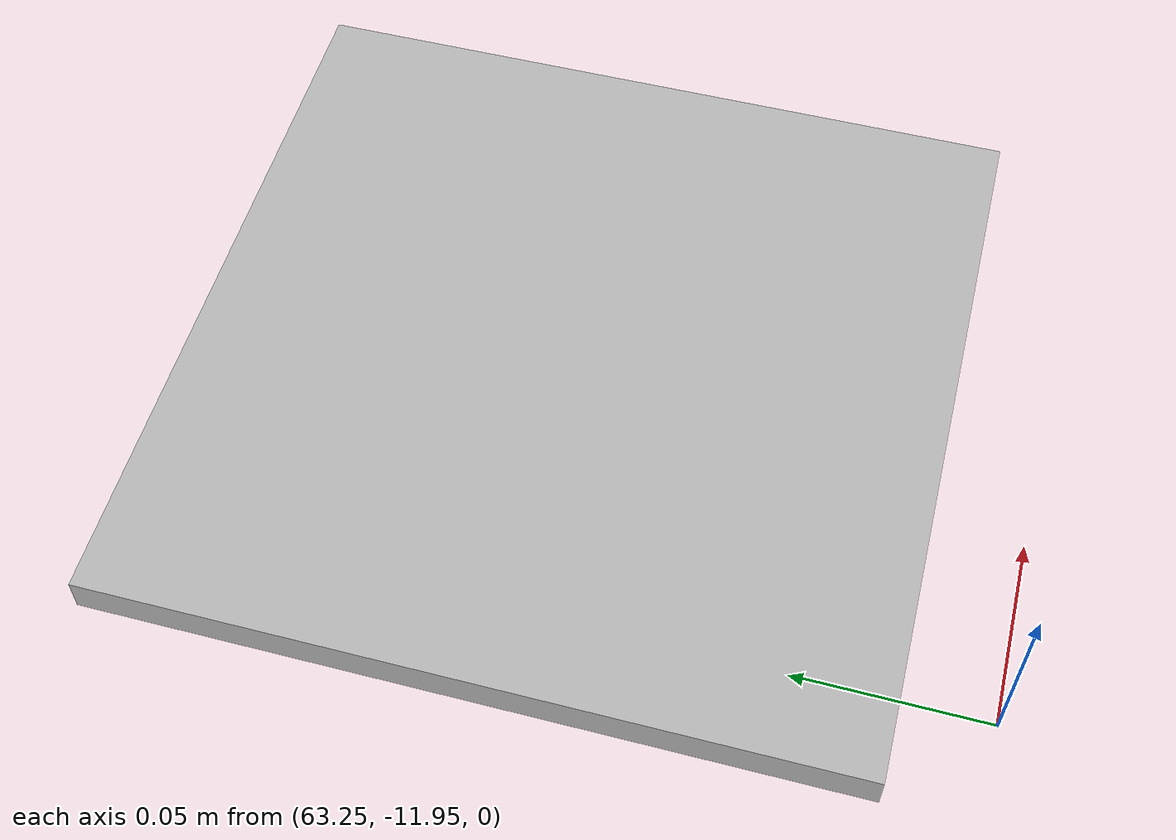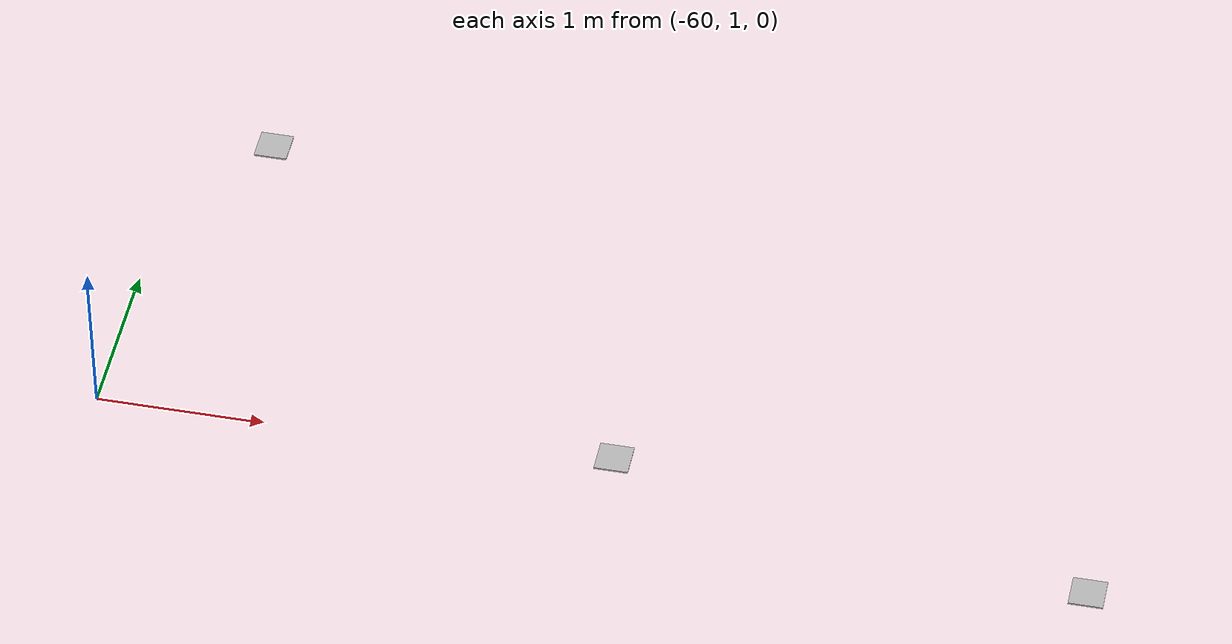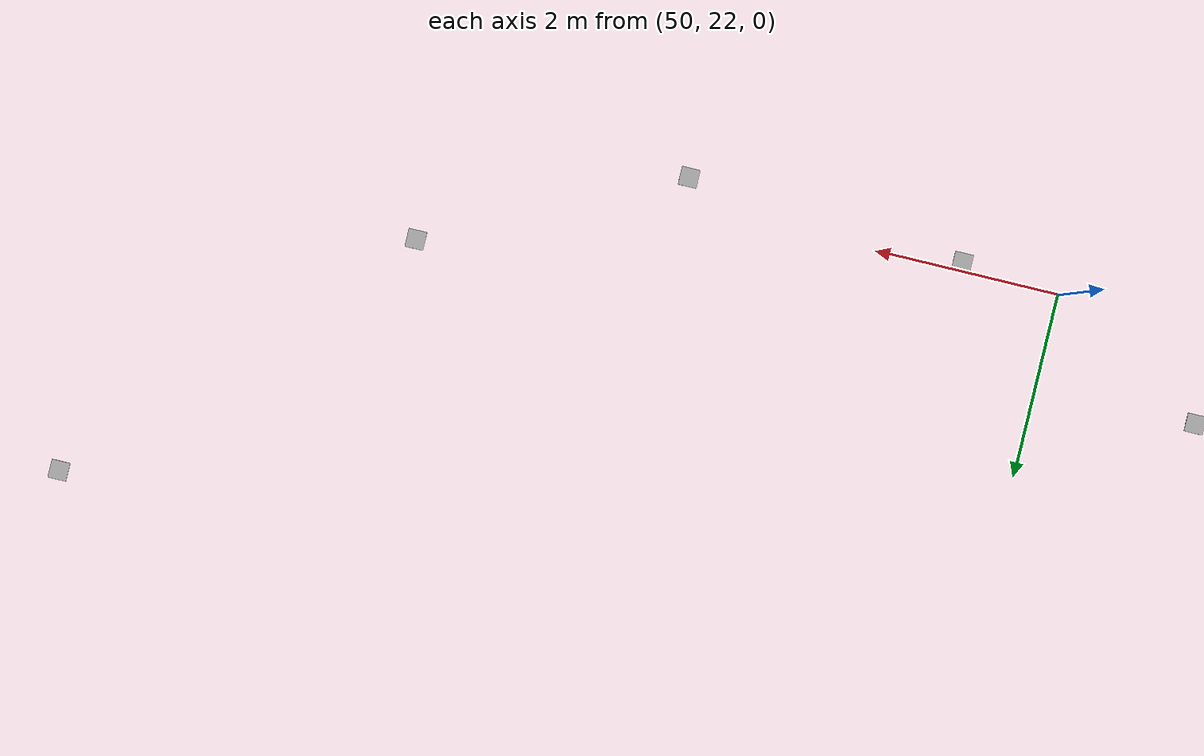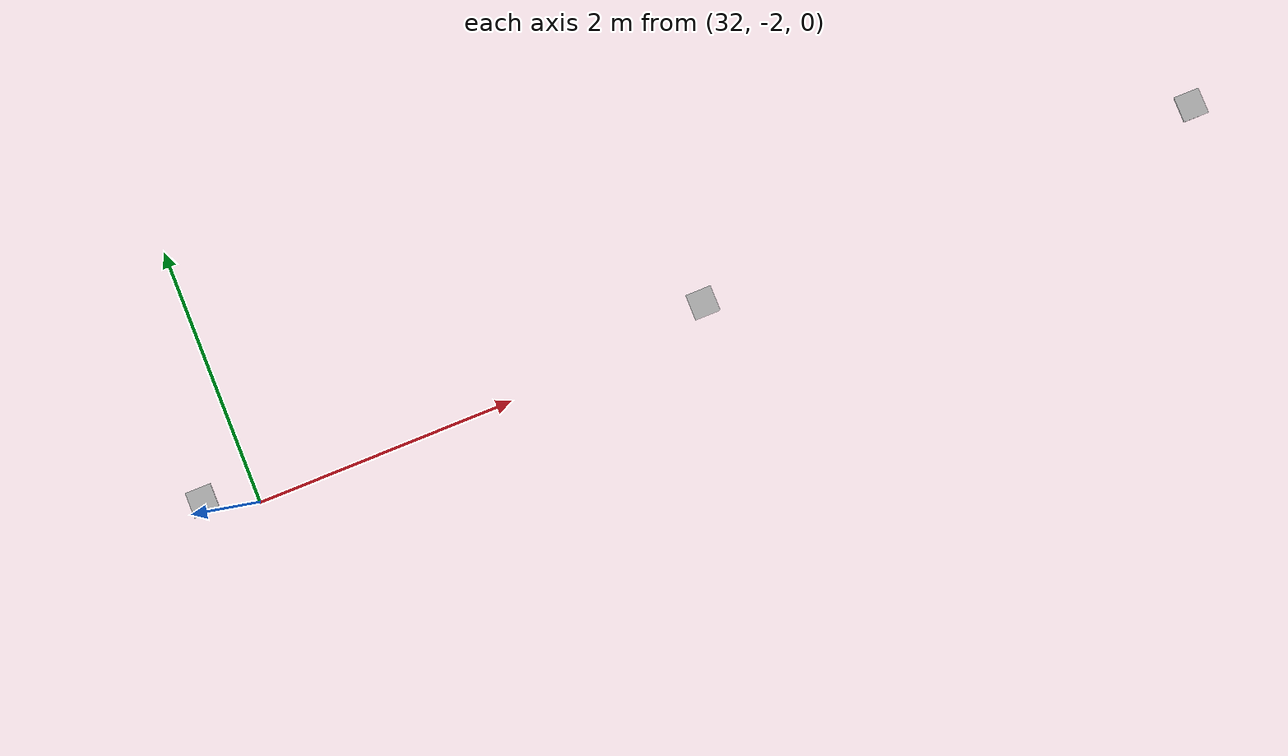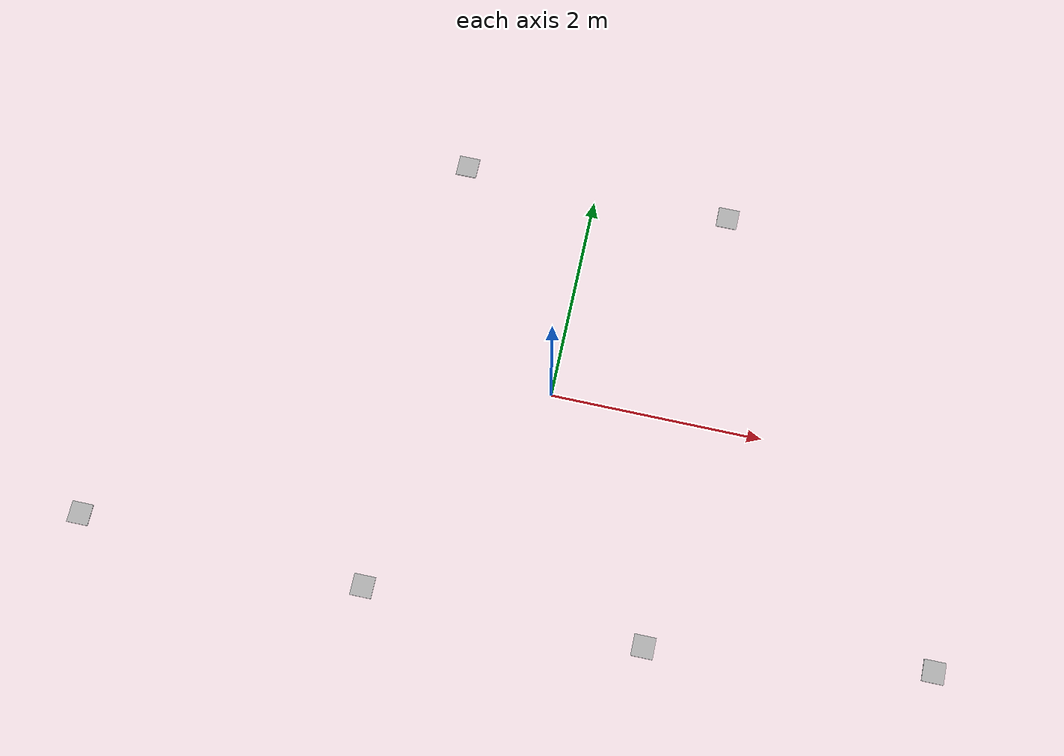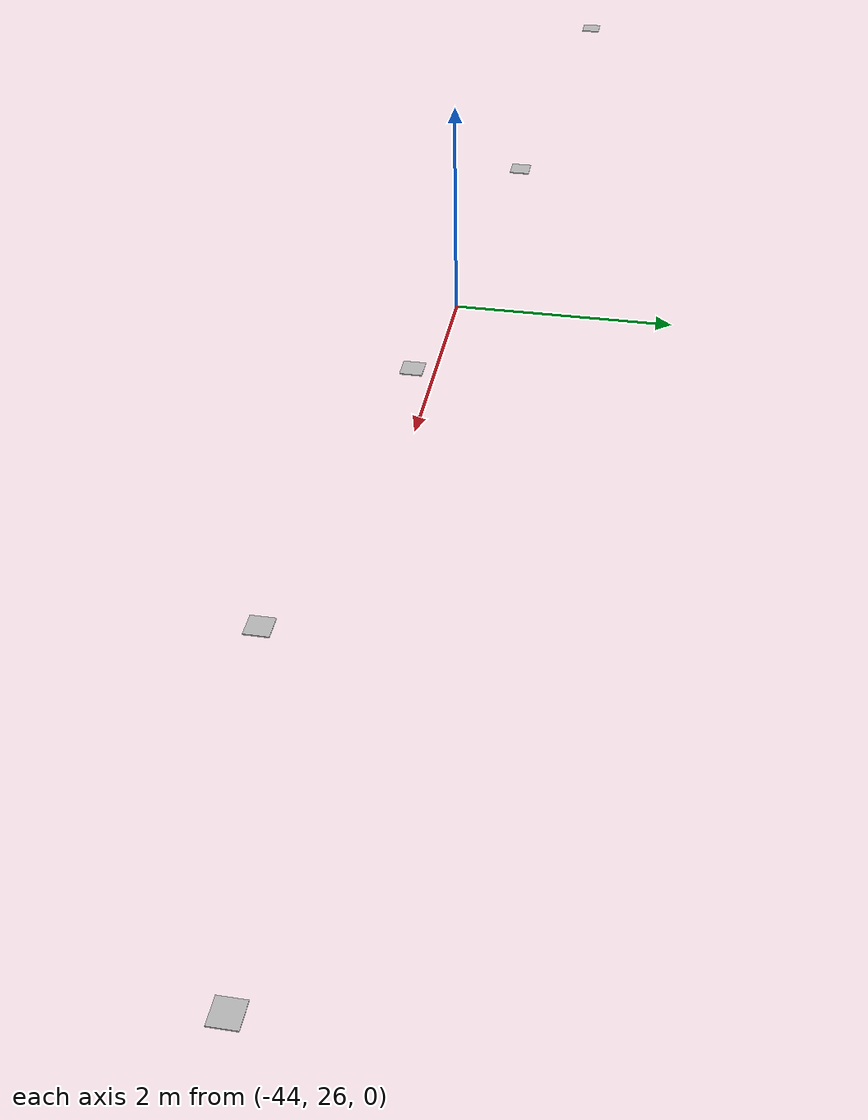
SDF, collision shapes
<?xml version='1.0' encoding='UTF-8'?>
<sdf version="1.4">
  <model name="some track">
    <include>
      <uri>model://cone_yellow</uri>
      <pose>3.882215022601452 -1.797297978044986 0 0 0 0</pose>
      <name>cone_right</name>
    </include>
    <include>
      <uri>model://cone_yellow</uri>
      <pose>7.891671089952982 -1.8409363456154262 0 0 0 0</pose>
      <name>cone_right</name>
    </include>
    <include>
      <uri>model://cone_yellow</uri>
      <pose>11.866871325148177 -1.8370316687459616 0 0 0 0</pose>
      <name>cone_right</name>
    </include>
    <include>
      <uri>model://cone_yellow</uri>
      <pose>15.81505661712021 -1.8526933715620444 0 0 0 0</pose>
      <name>cone_right</name>
    </include>
    <include>
      <uri>model://cone_yellow</uri>
      <pose>19.792605359863973 -1.8160668437269316 0 0 0 0</pose>
      <name>cone_right</name>
    </include>
    <include>
      <uri>model://cone_yellow</uri>
      <pose>23.77433902991659 -1.7148735920068297 0 0 0 0</pose>
      <name>cone_right</name>
    </include>
    <include>
      <uri>model://cone_yellow</uri>
      <pose>27.679037530347685 -1.7336472708352932 0 0 0 0</pose>
      <name>cone_right</name>
    </include>
    <include>
      <uri>model://cone_yellow</uri>
      <pose>31.6032659484331 -1.8295488659008463 0 0 0 0</pose>
      <name>cone_right</name>
    </include>
    <include>
      <uri>model://cone_yellow</uri>
      <pose>35.59734281316367 -1.8501600570787549 0 0 0 0</pose>
      <name>cone_right</name>
    </include>
    <include>
      <uri>model://cone_yellow</uri>
      <pose>39.559188197874654 -1.838586414346345 0 0 0 0</pose>
      <name>cone_right</name>
    </include>
    <include>
      <uri>model://cone_yellow</uri>
      <pose>43.483492806991165 -1.8569485618495234 0 0 0 0</pose>
      <name>cone_right</name>
    </include>
    <include>
      <uri>model://cone_yellow</uri>
      <pose>47.52266032827457 -1.818367892362298 0 0 0 0</pose>
      <name>cone_right</name>
    </include>
    <include>
      <uri>model://cone_yellow</uri>
      <pose>50.97496303147042 -2.589434194706195 0 0 0 0</pose>
      <name>cone_right</name>
    </include>
    <include>
      <uri>model://cone_yellow</uri>
      <pose>53.38892791012007 -4.7878785235748715 0 0 0 0</pose>
      <name>cone_right</name>
    </include>
    <include>
      <uri>model://cone_yellow</uri>
      <pose>55.83146065989252 -7.586071194064796 0 0 0 0</pose>
      <name>cone_right</name>
    </include>
    <include>
      <uri>model://cone_yellow</uri>
      <pose>59.12073898661306 -10.197054872425916 0 0 0 0</pose>
      <name>cone_right</name>
    </include>
    <include>
      <uri>model://cone_yellow</uri>
      <pose>63.326317080042 -11.826506626491966 0 0 0 0</pose>
      <name>cone_right</name>
    </include>
    <include>
      <uri>model://cone_yellow</uri>
      <pose>67.71026359245282 -12.304203330640783 0 0 0 0</pose>
      <name>cone_right</name>
    </include>
    <include>
      <uri>model://cone_yellow</uri>
      <pose>72.03467582218849 -11.716925490259332 0 0 0 0</pose>
      <name>cone_right</name>
    </include>
    <include>
      <uri>model://cone_yellow</uri>
      <pose>76.1486384196638 -10.110867423300377 0 0 0 0</pose>
      <name>cone_right</name>
    </include>
    <include>
      <uri>model://cone_yellow</uri>
      <pose>79.76032015970294 -7.575362119696767 0 0 0 0</pose>
      <name>cone_right</name>
    </include>
    <include>
      <uri>model://cone_yellow</uri>
      <pose>82.5289417860347 -4.188201596786433 0 0 0 0</pose>
      <name>cone_right</name>
    </include>
    <include>
      <uri>model://cone_yellow</uri>
      <pose>84.26956788033807 -0.15931915758991133 0 0 0 0</pose>
      <name>cone_right</name>
    </include>
    <include>
      <uri>model://cone_yellow</uri>
      <pose>85.2185985047116 4.076479915419728 0 0 0 0</pose>
      <name>cone_right</name>
    </include>
    <include>
      <uri>model://cone_yellow</uri>
      <pose>85.69480426033988 8.281995062981867 0 0 0 0</pose>
      <name>cone_right</name>
    </include>
    <include>
      <uri>model://cone_yellow</uri>
      <pose>85.61240148885437 12.47503529000548 0 0 0 0</pose>
      <name>cone_right</name>
    </include>
    <include>
      <uri>model://cone_yellow</uri>
      <pose>84.70246442850349 16.596424591282776 0 0 0 0</pose>
      <name>cone_right</name>
    </include>
    <include>
      <uri>model://cone_yellow</uri>
      <pose>82.8444487094808 20.50223780655276 0 0 0 0</pose>
      <name>cone_right</name>
    </include>
    <include>
      <uri>model://cone_yellow</uri>
      <pose>80.2933611533565 24.051425933988586 0 0 0 0</pose>
      <name>cone_right</name>
    </include>
    <include>
      <uri>model://cone_yellow</uri>
      <pose>76.9512035872424 26.8274940323691 0 0 0 0</pose>
      <name>cone_right</name>
    </include>
    <include>
      <uri>model://cone_yellow</uri>
      <pose>72.62712531799602 28.14852089452696 0 0 0 0</pose>
      <name>cone_right</name>
    </include>
    <include>
      <uri>model://cone_yellow</uri>
      <pose>68.15445732019367 28.523029960576803 0 0 0 0</pose>
      <name>cone_right</name>
    </include>
    <include>
      <uri>model://cone_yellow</uri>
      <pose>63.86287096714097 28.30015110019089 0 0 0 0</pose>
      <name>cone_right</name>
    </include>
    <include>
      <uri>model://cone_yellow</uri>
      <pose>59.938768139016396 26.332626457956916 0 0 0 0</pose>
      <name>cone_right</name>
    </include>
    <include>
      <uri>model://cone_yellow</uri>
      <pose>56.808835342433476 23.036085510342026 0 0 0 0</pose>
      <name>cone_right</name>
    </include>
    <include>
      <uri>model://cone_yellow</uri>
      <pose>48.24419389091466 22.9916455278231 0 0 0 0</pose>
      <name>cone_right</name>
    </include>
    <include>
      <uri>model://cone_yellow</uri>
      <pose>46.6837816929786 26.038190053744536 0 0 0 0</pose>
      <name>cone_right</name>
    </include>
    <include>
      <uri>model://cone_yellow</uri>
      <pose>45.37270099620925 29.918740547737027 0 0 0 0</pose>
      <name>cone_right</name>
    </include>
    <include>
      <uri>model://cone_yellow</uri>
      <pose>44.307074946961414 33.791072769345554 0 0 0 0</pose>
      <name>cone_right</name>
    </include>
    <include>
      <uri>model://cone_yellow</uri>
      <pose>43.465369120592705 37.509120995634 0 0 0 0</pose>
      <name>cone_right</name>
    </include>
    <include>
      <uri>model://cone_yellow</uri>
      <pose>42.78483383752167 41.219561691897155 0 0 0 0</pose>
      <name>cone_right</name>
    </include>
    <include>
      <uri>model://cone_yellow</uri>
      <pose>42.168628800677844 45.05914787227584 0 0 0 0</pose>
      <name>cone_right</name>
    </include>
    <include>
      <uri>model://cone_yellow</uri>
      <pose>41.43255944323224 49.010536477397466 0 0 0 0</pose>
      <name>cone_right</name>
    </include>
    <include>
      <uri>model://cone_yellow</uri>
      <pose>40.373673762367375 52.97840180846406 0 0 0 0</pose>
      <name>cone_right</name>
    </include>
    <include>
      <uri>model://cone_yellow</uri>
      <pose>38.8820741056482 56.85126623778744 0 0 0 0</pose>
      <name>cone_right</name>
    </include>
    <include>
      <uri>model://cone_yellow</uri>
      <pose>37.01225711445318 60.544122283432436 0 0 0 0</pose>
      <name>cone_right</name>
    </include>
    <include>
      <uri>model://cone_yellow</uri>
      <pose>34.82340235218731 64.03347614013687 0 0 0 0</pose>
      <name>cone_right</name>
    </include>
    <include>
      <uri>model://cone_yellow</uri>
      <pose>32.335835593993764 67.2943451884003 0 0 0 0</pose>
      <name>cone_right</name>
    </include>
    <include>
      <uri>model://cone_yellow</uri>
      <pose>29.316792096958924 70.22582086993263 0 0 0 0</pose>
      <name>cone_right</name>
    </include>
    <include>
      <uri>model://cone_yellow</uri>
      <pose>25.4951246059608 72.55912063338985 0 0 0 0</pose>
      <name>cone_right</name>
    </include>
    <include>
      <uri>model://cone_yellow</uri>
      <pose>16.524968536494264 71.95937051244665 0 0 0 0</pose>
      <name>cone_right</name>
    </include>
    <include>
      <uri>model://cone_yellow</uri>
      <pose>13.211893087349726 68.57543601107022 0 0 0 0</pose>
      <name>cone_right</name>
    </include>
    <include>
      <uri>model://cone_yellow</uri>
      <pose>11.043722947551762 64.84434640000454 0 0 0 0</pose>
      <name>cone_right</name>
    </include>
    <include>
      <uri>model://cone_yellow</uri>
      <pose>9.110313884549821 61.396429885623895 0 0 0 0</pose>
      <name>cone_right</name>
    </include>
    <include>
      <uri>model://cone_yellow</uri>
      <pose>6.998596802478076 58.1858837850496 0 0 0 0</pose>
      <name>cone_right</name>
    </include>
    <include>
      <uri>model://cone_yellow</uri>
      <pose>4.792239292470265 54.91831240557997 0 0 0 0</pose>
      <name>cone_right</name>
    </include>
    <include>
      <uri>model://cone_yellow</uri>
      <pose>2.685236069836724 51.483720447758536 0 0 0 0</pose>
      <name>cone_right</name>
    </include>
    <include>
      <uri>model://cone_yellow</uri>
      <pose>0.6618306942688537 48.05734172174414 0 0 0 0</pose>
      <name>cone_right</name>
    </include>
    <include>
      <uri>model://cone_yellow</uri>
      <pose>-1.5874035688377386 44.99290192058357 0 0 0 0</pose>
      <name>cone_right</name>
    </include>
    <include>
      <uri>model://cone_yellow</uri>
      <pose>-4.405413926328844 42.50792245162447 0 0 0 0</pose>
      <name>cone_right</name>
    </include>
    <include>
      <uri>model://cone_yellow</uri>
      <pose>-7.689444669299568 41.059325921174235 0 0 0 0</pose>
      <name>cone_right</name>
    </include>
    <include>
      <uri>model://cone_yellow</uri>
      <pose>-10.77401763589904 41.323895810497 0 0 0 0</pose>
      <name>cone_right</name>
    </include>
    <include>
      <uri>model://cone_yellow</uri>
      <pose>-14.114295783776837 42.50214765227788 0 0 0 0</pose>
      <name>cone_right</name>
    </include>
    <include>
      <uri>model://cone_yellow</uri>
      <pose>-18.478908064798528 42.90732405345164 0 0 0 0</pose>
      <name>cone_right</name>
    </include>
    <include>
      <uri>model://cone_yellow</uri>
      <pose>-23.029855366707594 41.564226604524116 0 0 0 0</pose>
      <name>cone_right</name>
    </include>
    <include>
      <uri>model://cone_yellow</uri>
      <pose>-26.75083639348957 38.87578738319823 0 0 0 0</pose>
      <name>cone_right</name>
    </include>
    <include>
      <uri>model://cone_yellow</uri>
      <pose>-29.343798680385696 35.34094884152863 0 0 0 0</pose>
      <name>cone_right</name>
    </include>
    <include>
      <uri>model://cone_yellow</uri>
      <pose>-31.346953209520258 31.664867419598146 0 0 0 0</pose>
      <name>cone_right</name>
    </include>
    <include>
      <uri>model://cone_yellow</uri>
      <pose>-33.63614204729522 28.381314822386326 0 0 0 0</pose>
      <name>cone_right</name>
    </include>
    <include>
      <uri>model://cone_yellow</uri>
      <pose>-36.45200060195512 26.03685414216051 0 0 0 0</pose>
      <name>cone_right</name>
    </include>
    <include>
      <uri>model://cone_yellow</uri>
      <pose>-39.50796314501814 25.361101430259883 0 0 0 0</pose>
      <name>cone_right</name>
    </include>
    <include>
      <uri>model://cone_yellow</uri>
      <pose>-42.912950655793146 25.79822992535056 0 0 0 0</pose>
      <name>cone_right</name>
    </include>
    <include>
      <uri>model://cone_yellow</uri>
      <pose>-46.84357630084678 26.189910793522927 0 0 0 0</pose>
      <name>cone_right</name>
    </include>
    <include>
      <uri>model://cone_yellow</uri>
      <pose>-50.819896713981066 26.523438475414487 0 0 0 0</pose>
      <name>cone_right</name>
    </include>
    <include>
      <uri>model://cone_yellow</uri>
      <pose>-55.007082497169726 26.288305172242413 0 0 0 0</pose>
      <name>cone_right</name>
    </include>
    <include>
      <uri>model://cone_yellow</uri>
      <pose>-61.882133750926904 20.218291921152584 0 0 0 0</pose>
      <name>cone_right</name>
    </include>
    <include>
      <uri>model://cone_yellow</uri>
      <pose>-62.234980679534026 15.44579144631471 0 0 0 0</pose>
      <name>cone_right</name>
    </include>
    <include>
      <uri>model://cone_yellow</uri>
      <pose>-61.96408465939989 11.340269843285235 0 0 0 0</pose>
      <name>cone_right</name>
    </include>
    <include>
      <uri>model://cone_yellow</uri>
      <pose>-61.715734286445766 7.36331317043855 0 0 0 0</pose>
      <name>cone_right</name>
    </include>
    <include>
      <uri>model://cone_yellow</uri>
      <pose>-59.488504787973824 3.2635944317397345 0 0 0 0</pose>
      <name>cone_right</name>
    </include>
    <include>
      <uri>model://cone_yellow</uri>
      <pose>-50.71499439726178 0.4542000076885868 0 0 0 0</pose>
      <name>cone_right</name>
    </include>
    <include>
      <uri>model://cone_yellow</uri>
      <pose>-46.787150387856926 0.024441789763142596 0 0 0 0</pose>
      <name>cone_right</name>
    </include>
    <include>
      <uri>model://cone_yellow</uri>
      <pose>-43.06901241365106 -0.773145009553541 0 0 0 0</pose>
      <name>cone_right</name>
    </include>
    <include>
      <uri>model://cone_yellow</uri>
      <pose>-39.51444111225103 -2.0164192785865174 0 0 0 0</pose>
      <name>cone_right</name>
    </include>
    <include>
      <uri>model://cone_yellow</uri>
      <pose>-35.88284278217618 -3.4295531292856003 0 0 0 0</pose>
      <name>cone_right</name>
    </include>
    <include>
      <uri>model://cone_yellow</uri>
      <pose>-31.79908317055549 -4.358768224676805 0 0 0 0</pose>
      <name>cone_right</name>
    </include>
    <include>
      <uri>model://cone_yellow</uri>
      <pose>-27.52447174795141 -4.536176668329134 0 0 0 0</pose>
      <name>cone_right</name>
    </include>
    <include>
      <uri>model://cone_yellow</uri>
      <pose>-23.37262542747374 -4.164780256138773 0 0 0 0</pose>
      <name>cone_right</name>
    </include>
    <include>
      <uri>model://cone_yellow</uri>
      <pose>-19.351141600541872 -3.479459342207514 0 0 0 0</pose>
      <name>cone_right</name>
    </include>
    <include>
      <uri>model://cone_yellow</uri>
      <pose>-15.413623917511998 -2.69438192901885 0 0 0 0</pose>
      <name>cone_right</name>
    </include>
    <include>
      <uri>model://cone_yellow</uri>
      <pose>-11.540188722307857 -2.0399241852765444 0 0 0 0</pose>
      <name>cone_right</name>
    </include>
    <include>
      <uri>model://cone_yellow</uri>
      <pose>-7.7510606953390955 -1.7757166057636231 0 0 0 0</pose>
      <name>cone_right</name>
    </include>
    <include>
      <uri>model://cone_yellow</uri>
      <pose>-4.009992143750308 -2.0210577904386127 0 0 0 0</pose>
      <name>cone_right</name>
    </include>
    <include>
      <uri>model://cone_yellow</uri>
      <pose>54.12430297069305 21.703756267385096 0 0 0 0</pose>
      <name>cone_right</name>
    </include>
    <include>
      <uri>model://cone_yellow</uri>
      <pose>51.06932286543933 21.89772325819485 0 0 0 0</pose>
      <name>cone_right</name>
    </include>
    <include>
      <uri>model://cone_yellow</uri>
      <pose>22.059314869226185 73.6356539148297 0 0 0 0</pose>
      <name>cone_right</name>
    </include>
    <include>
      <uri>model://cone_yellow</uri>
      <pose>19.099613471372194 73.67219343826 0 0 0 0</pose>
      <name>cone_right</name>
    </include>
    <include>
      <uri>model://cone_yellow</uri>
      <pose>-57.92190106306539 25.378928923962686 0 0 0 0</pose>
      <name>cone_right</name>
    </include>
    <include>
      <uri>model://cone_yellow</uri>
      <pose>-59.98848560959581 23.27182311181401 0 0 0 0</pose>
      <name>cone_right</name>
    </include>
    <include>
      <uri>model://cone_yellow</uri>
      <pose>-54.116961842699396 0.6184717099220336 0 0 0 0</pose>
      <name>cone_right</name>
    </include>
    <include>
      <uri>model://cone_yellow</uri>
      <pose>-56.956586847594764 1.1222761462744373 0 0 0 0</pose>
      <name>cone_right</name>
    </include>
    <include>
      <uri>model://cone_orange_big</uri>
      <pose>-1.3 2.125 0 0 0 0</pose>
      <name>cone_orange_big</name>
    </include>
    <include>
      <uri>model://cone_orange_big</uri>
      <pose>-1.3 -2.125 0 0 0 0</pose>
      <name>cone_orange_big</name>
    </include>
    <include>
      <uri>model://cone_orange_big</uri>
      <pose>1.3 2.125 0 0 0 0</pose>
      <name>cone_orange_big</name>
    </include>
    <include>
      <uri>model://cone_orange_big</uri>
      <pose>1.3 -2.125 0 0 0 0</pose>
      <name>cone_orange_big</name>
    </include>
  </model>
</sdf>

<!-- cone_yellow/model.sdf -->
<sdf version='1.4'>
  <model name="cone_yellow">
    <link name="link">
    <collision name="collision"><geometry><box><size> 0.2 0.2 0.01</size>
             </box></geometry></collision>
      <visual name="visual">
        <geometry>
          <mesh>
            <uri>model://YellowCone.dae</uri>
            <scale>1 1 1</scale>
          </mesh>
        </geometry>
        <material>
            <script>
              <uri>model://cone_yellow/materials/scripts</uri>
              <uri>model://cone_yellow/materials/textures</uri>
              <name>cone_yellow/Image</name>
            </script>
        </material>
      </visual>
    </link>
  </model>
</sdf>

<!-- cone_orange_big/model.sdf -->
<sdf version='1.4'>
  <model name="cone_orange_big">
    <link name="link">
    <collision name="collision"><geometry><box><size> 0.2 0.2 0.01</size>
             </box></geometry></collision>
      <visual name="visual">
        <geometry>
          <mesh>
            <uri>model://BigOrangeCone.dae</uri>
            <scale>1 1 1</scale>
          </mesh>
        </geometry>
        <material>
            <script>
              <uri>model://cone_orange_big/materials/scripts</uri>
              <uri>model://cone_orange_big/materials/textures</uri>
              <name>cone_orange_big/Image</name>
            </script>
        </material>
      </visual>
    </link>
  </model>
</sdf>
